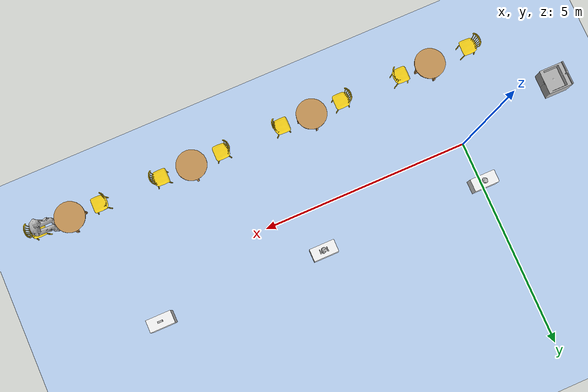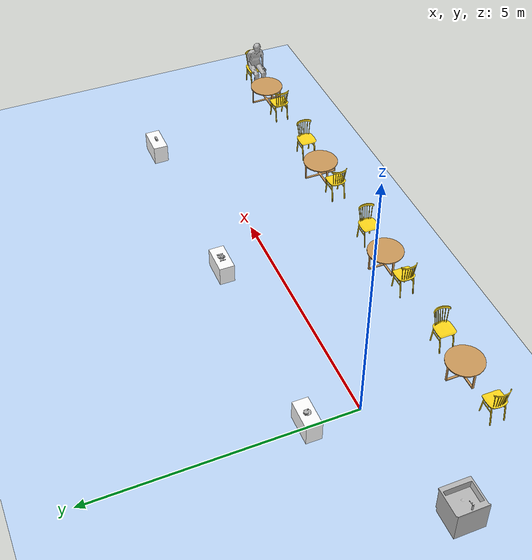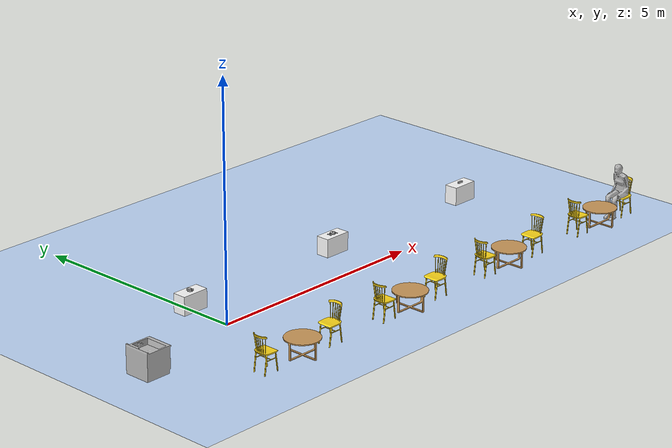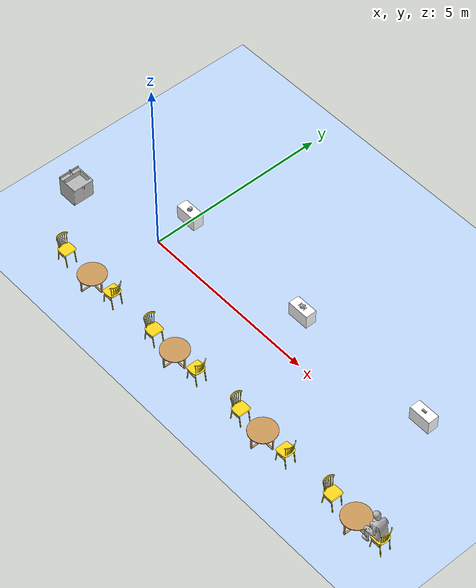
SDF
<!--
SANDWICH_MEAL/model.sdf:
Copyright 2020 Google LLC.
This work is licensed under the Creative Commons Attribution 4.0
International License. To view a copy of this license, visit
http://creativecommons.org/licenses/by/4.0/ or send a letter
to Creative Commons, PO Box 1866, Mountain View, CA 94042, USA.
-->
<sdf version="1.7">
 <world name="food_court">
  <plugin filename="gz-sim-physics-system" name="gz::sim::systems::Physics"/>
  <plugin filename="gz-sim-user-commands-system" name="gz::sim::systems::UserCommands"/>
  <plugin filename="gz-sim-scene-broadcaster-system" name="gz::sim::systems::SceneBroadcaster"/>
  <plugin filename="gz-sim-sensors-system" name="gz::sim::systems::Sensors">
   <render_engine>ogre2</render_engine>
  </plugin>
  <plugin filename="gz-sim-imu-system" name="gz::sim::systems::Imu"/>
  <light type="directional" name="sun">
   <cast_shadows>false</cast_shadows>
   <pose>0 0 10 0 0 0</pose>
   <diffuse>0.8 0.8 0.8 1</diffuse>
   <specular>0.2 0.2 0.2 1</specular>
   <attenuation>
    <range>1000</range>
    <constant>0.9</constant>
    <linear>0.01</linear>
    <quadratic>0.001</quadratic>
   </attenuation>
   <direction>-0.5 0.1 -0.9</direction>
  </light>
  <model name="ground_plane">
   <static>true</static>
   <link name="link">
    <collision name="ground_collision">
     <geometry><plane><normal>0 0 1</normal><size>30 30</size></plane></geometry>
    </collision>
    <visual name="ground_visual">
     <geometry><plane><normal>0 0 1</normal><size>30 30</size></plane></geometry>
     <material>
      <ambient>0.75 0.85 0.98 1</ambient>
      <diffuse>0.75 0.85 0.98 1</diffuse>
      <specular>0.05 0.05 0.05 1</specular>
     </material>
    </visual>
   </link>
  </model>
  <include><uri>model://stall_salad</uri><pose>0 1.0039 0.2081 0 0 0</pose></include>
  <include><uri>model://stall_chicken</uri><pose>4 1.0039 0.2081 0 0 0</pose></include>
  <include><uri>model://stall_drinks</uri><pose>8 1.0039 0.2081 0 0 0</pose></include>
  <include><uri>model://CoffeeTable</uri><name>coffee1</name><pose>0 -2.0 0.0 0 0 0</pose></include>
  <include><uri>model://CoffeeTable</uri><name>coffee2</name><pose>3 -2.0 0.0 0 0 0</pose></include>
  <include><uri>model://CoffeeTable</uri><name>coffee3</name><pose>6 -2.0 0.0 0 0 0</pose></include>
  <include><uri>model://CoffeeTable</uri><name>coffee4</name><pose>9 -2.0 0.0 0 0 0</pose></include>
  <include><uri>model://KitchenSink</uri><name>kitchen_sink1</name><pose>-2.5 -0.5 0.0 0 0 0</pose></include>
  <include><uri>model://WoodenChair</uri><name>chair1</name><pose>0.75 -2.0 0.0 0 0 3.14</pose></include>
  <include><uri>model://WoodenChair</uri><name>chair2</name><pose>-0.9649 -2.0 0.0 0 0 0</pose></include>
  <include><uri>model://WoodenChair</uri><name>chair3</name><pose>2.25 -2.0 0.0 0 0 0</pose></include>
  <include><uri>model://WoodenChair</uri><name>chair4</name><pose>3.75 -2.0 0.0 0 0 3.14</pose></include>
  <include><uri>model://WoodenChair</uri><name>chair5</name><pose>5.25 -2.0 0.0 0 0 0</pose></include>
  <include><uri>model://WoodenChair</uri><name>chair6</name><pose>6.75 -2.0 0.0 0 0 3.14</pose></include>
  <include><uri>model://WoodenChair</uri><name>chair7</name><pose>8.25 -2.0 0.0 0 0 0</pose></include>
  <include><uri>model://WoodenChair</uri><name>chair8</name><pose>9.75 -2.0 0.0 0 0 3.14</pose></include>
  <include><uri>model://PatientFSit</uri><name>person6</name><pose>9.75 -2.0 0.0 0 0 3.14</pose></include>
  <include><uri>model://SANDWICH_MEAL</uri><name>food1</name><pose>0 1.0039 0.4081 0 0 0</pose></include>
  <include><uri>model://STEAK_SET</uri><name>food2</name><pose>4 1.0039 0.4081 0 0 0</pose></include>
  <include><uri>model://pepsi2</uri><name>food3</name><pose>8 1.0039 0.4081 0 0 0</pose></include>
 </world>
</sdf>

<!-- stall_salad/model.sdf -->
<sdf version="1.9">
    <model name="stall_salad">
        <static>true</static>
        <link name="link">
            <collision name="col">
                <geometry><box><size>0.6 0.3 0.4</size></box></geometry>
            </collision>
            <visual name="vis">
                <geometry><box><size>0.6 0.3 0.4</size></box></geometry>
                <material>
                    <ambient>1 1 1 1</ambient>
                    <diffuse>1 1 1 1</diffuse>
                    <specular>0 0 0 1</specular>
                    <pbr>
                        <metal>
                            <albedo_map>model://stall_salad/materials/textures/greensalads.png</albedo_map>
                            <roughness>1.0</roughness>
                            <metalness>0.0</metalness>
                        </metal>
                    </pbr>
                </material>
            </visual>
        </link>
    </model>
</sdf>

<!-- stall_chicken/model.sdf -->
<sdf version="1.9">
    <model name="stall_chicken">
        <static>true</static>
        <link name="link">
            <collision name="col">
                <geometry><box><size>0.6 0.3 0.4</size></box></geometry>
            </collision>
            <visual name="vis">
                <geometry><box><size>0.6 0.3 0.4</size></box></geometry>
                <material>
                    <ambient>1 1 1 1</ambient>
                    <diffuse>1 1 1 1</diffuse>
                    <specular>0 0 0 1</specular>
                    <pbr>
                        <metal>
                            <albedo_map>model://stall_chicken/materials/textures/cookdokoochicken.png</albedo_map>
                            <roughness>1.0</roughness>
                            <metalness>0.0</metalness>
                        </metal>
                    </pbr>
                </material>
            </visual>
        </link>
    </model>
</sdf>

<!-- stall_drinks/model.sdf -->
<sdf version="1.9">
    <model name="stall_drinks">
        <static>true</static>
        <link name="link">
            <collision name="col">
                <geometry><box><size>0.6 0.3 0.4</size></box></geometry>
            </collision>
            <visual name="vis">
                <geometry><box><size>0.6 0.3 0.4</size></box></geometry>
                <material>
                    <ambient>1 1 1 1</ambient>
                    <diffuse>1 1 1 1</diffuse>
                    <specular>0 0 0 1</specular>
                    <pbr>
                        <metal>
                            <albedo_map>model://stall_drinks/materials/textures/colddrinks.png</albedo_map>
                            <roughness>1.0</roughness>
                            <metalness>0.0</metalness>
                        </metal>
                    </pbr>
                </material>
            </visual>
        </link>
    </model>
</sdf>

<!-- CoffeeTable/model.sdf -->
<sdf version="1.6">
  <model name='CoffeeTable'>
    <link name="body">
      <pose>0 0 0 0 0 0</pose>

      <visual name="visual">
        <geometry>
          <mesh>
            <uri>model://CoffeeTable/meshes/CoffeeTable.obj</uri>
            <scale>0.00817 0.00817 0.00817</scale>
          </mesh>
        </geometry>
        <!-- ========= Added Light Wooden Brown Material ========= -->
        <material>
          <ambient>0.75 0.55 0.30 1</ambient>
          <diffuse>0.80 0.60 0.35 1</diffuse>
          <specular>0.1 0.1 0.1 1</specular>
        </material>
      </visual>

      <collision name="collision">
        <geometry>
          <mesh>
            <uri>model://CoffeeTable/meshes/CoffeeTable.obj</uri>
            <scale>0.00817 0.00817 0.00817</scale>
          </mesh>
        </geometry>
      </collision>

    </link>
  </model>
</sdf>

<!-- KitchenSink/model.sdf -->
<sdf version="1.5">
<model name="KitchenSink">
<link name="link">
<pose>0 0 0 0 0 0</pose>
<visual name="visual">
<geometry>
<mesh>
  <uri>model://KitchenSink/meshes/kitchenSink.obj</uri>
  <scale>0.75 0.75 0.75</scale>  <!-- 50% scale -->
</mesh>
</geometry>
</visual>
<collision name="collision">
<geometry>
<mesh>
  <uri>model://KitchenSink/meshes/kitchenSink.obj</uri>
  <scale>0.75 0.75 0.75</scale>  <!-- Same scale for collision -->
</mesh>
</geometry>
</collision>
</link>
</model>
</sdf>

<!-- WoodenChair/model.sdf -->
<sdf version="1.6">
  <model name="WoodenChair">
   <static>true</static>
    <link name="body">
      <pose>0 0 0 0 0 0</pose>

      <visual name="visual">
        <geometry>
          <mesh>
            <uri>model://WoodenChair/meshes/WoodenChair.obj</uri>
          </mesh>
        </geometry>

        <!-- ========= Yellow Material Added ========= -->
        <material>
          <!-- nice warm yellow -->
          <ambient>1.0 0.9 0.2 1</ambient>
          <diffuse>1.0 0.85 0.1 1</diffuse>
          <specular>0.1 0.1 0.1 1</specular>
        </material>
      </visual>

    </link>
  </model>
</sdf>

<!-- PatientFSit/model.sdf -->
<sdf version="1.6">
  <model name="PatientFSit">
   <static>true</static>
    <link name="body">
      <pose>0 0 0 0 0 0</pose>

      <visual name="visual">
        <geometry>
          <mesh>
            <uri>model://PatientFSit/meshes/PatientFSit.obj</uri>
          </mesh>
        </geometry>
      </visual>

    </link>
  </model>
</sdf>

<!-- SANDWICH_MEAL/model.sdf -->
<sdf version="1.6">
  <model name="SANDWICH_MEAL">
    <link name="link_0">
      <visual name="visual">
        <geometry>
          <mesh>
            <uri>meshes/model.obj</uri>
          </mesh>
        </geometry>
      </visual>
      <collision name="collision_0">
        <geometry>
          <mesh>
            <uri>meshes/model.obj</uri>
          </mesh>
        </geometry>
      <surface>
        <friction>
          <ode>
            <mu>1.5</mu>
            <mu2>1.5</mu2>
          </ode>
        </friction>
        <contact>
          <ode>
            <kp>100000</kp>
            <kd>1.0</kd>
          </ode>
        </contact>
      </surface>
      </collision>
    </link>
  </model>
</sdf>

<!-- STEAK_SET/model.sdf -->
<sdf version="1.6">
  <model name="STEAK_SET">
    <link name="link_0">
      <visual name="visual">
        <geometry>
          <mesh>
            <uri>meshes/model.obj</uri>
          </mesh>
        </geometry>
      </visual>
      <collision name="collision_0">
        <geometry>
          <mesh>
            <uri>meshes/model.obj</uri>
          </mesh>
        </geometry>
        <surface>
          <friction>
            <ode>
              <mu>1.5</mu>
              <mu2>1.5</mu2>
            </ode>
          </friction>

          <contact>
            <ode>
              <kp>100000</kp>
              <kd>1.0</kd>
            </ode>
          </contact>
        </surface>
      </collision>
    </link>
  </model>
</sdf>

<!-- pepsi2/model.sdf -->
<sdf version="1.6">
  <model name="pepsi2">

    <link name="link_0">

      <!-- VISUAL -->
      <visual name="visual">
        <geometry>
          <mesh>
            <uri>meshes/model.obj</uri>
            <scale>0.3 0.3 0.3</scale>
          </mesh>
        </geometry>
      </visual>

      <!-- COLLISION with FRICTION -->
      <collision name="collision_0">
        <geometry>
          <mesh>
            <uri>meshes/model.obj</uri>
            <scale>0.3 0.3 0.3</scale>
          </mesh>
        </geometry>

        <surface>
          <friction>
            <ode>
              <!-- Sliding friction -->
              <mu>1.2</mu>
              <mu2>1.2</mu2>

              <!-- Direction of friction (optional but good) -->
              <fdir1>1 0 0</fdir1>

              <!-- Torsional (rolling) friction -->
              <slip1>0.0</slip1>
              <slip2>0.0</slip2>
            </ode>
          </friction>

          <contact>
            <!-- Improves contact stability -->
            <kp>100000</kp>
            <kd>10</kd>
          </contact>
        </surface>
      </collision>

    </link>
  </model>
</sdf>
